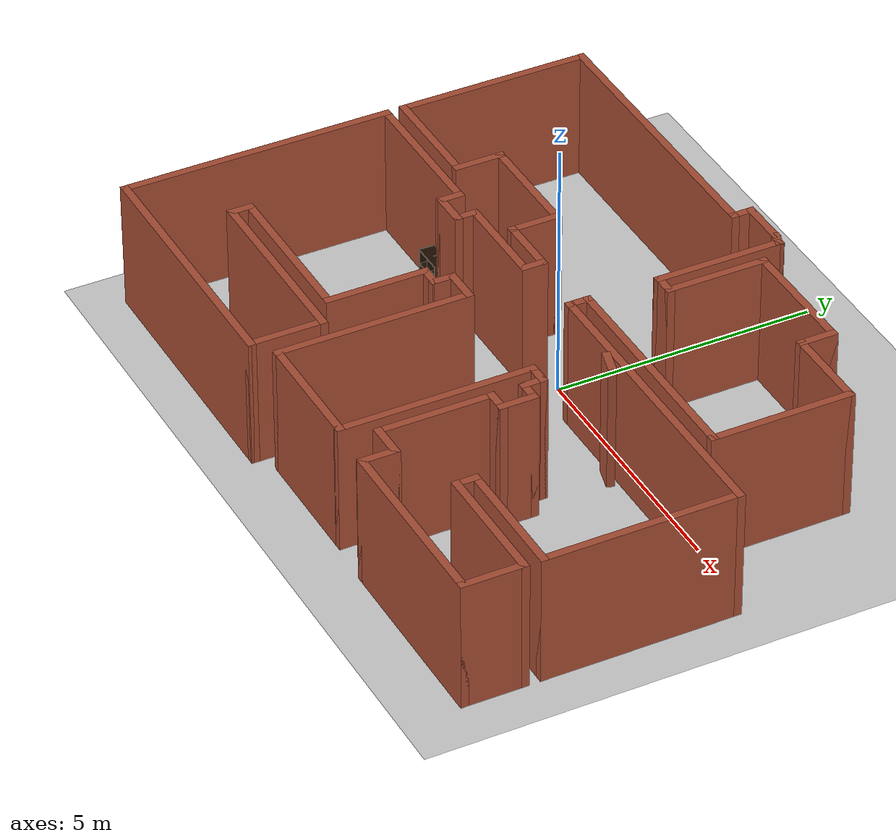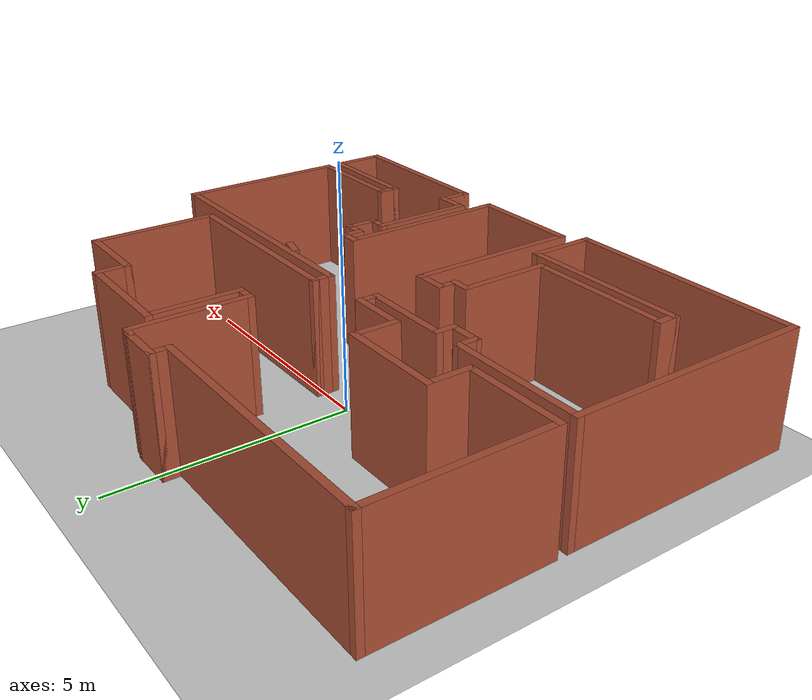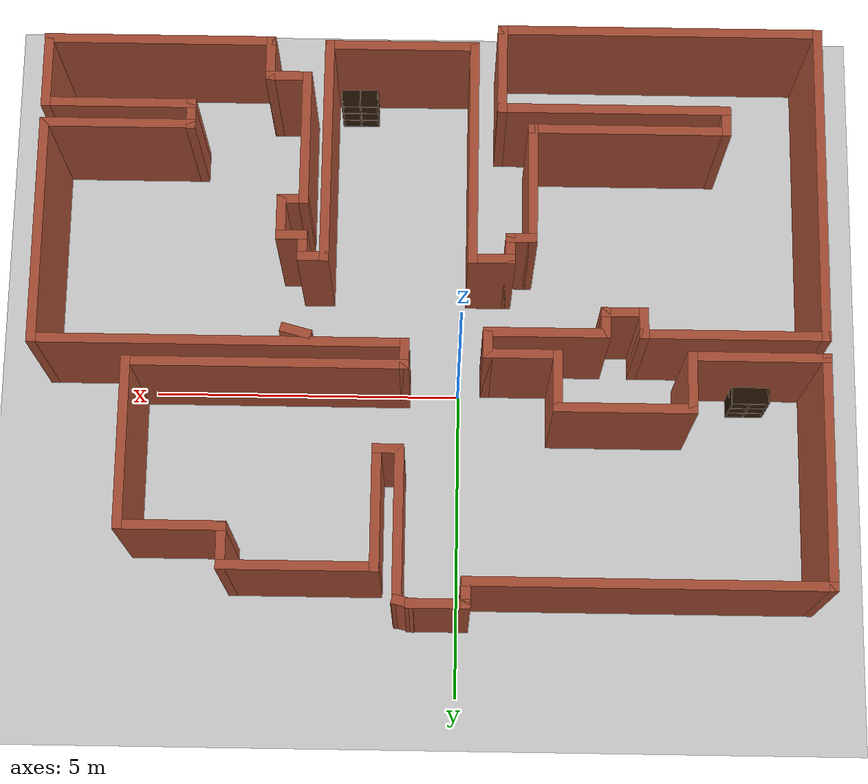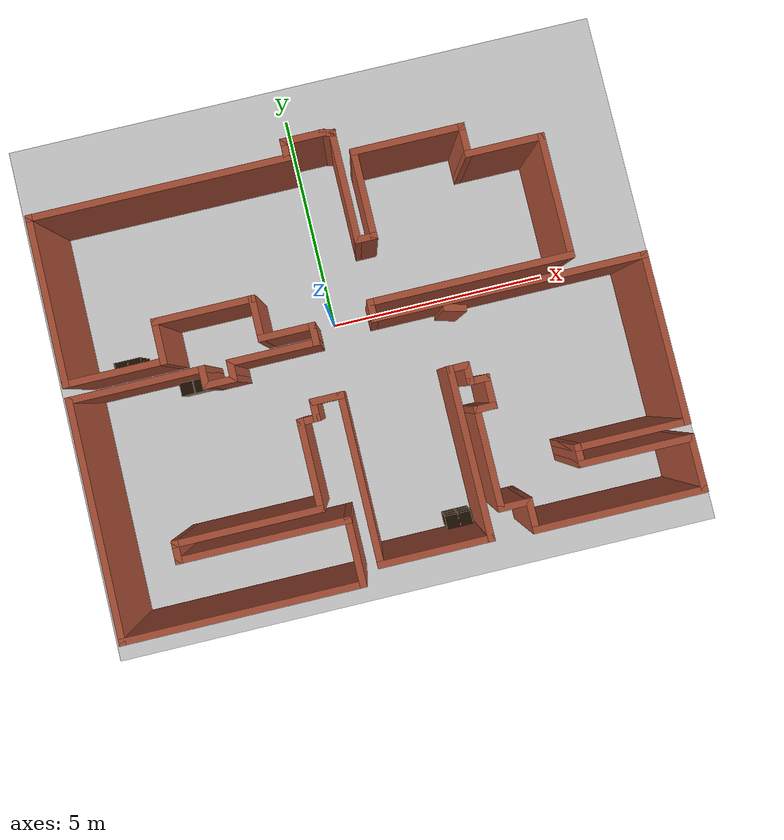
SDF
<sdf version="1.7">
 <world name="default">
  <light name="sun" type="directional">
   <pose>0 0 10 0 -0 0</pose>
   <diffuse>0.8 0.8 0.8 1</diffuse>
   <specular>0.2 0.2 0.2 1</specular>
   <attenuation>
    <range>1000</range>
    <constant>0.9</constant>
    <linear>0.01</linear>
    <quadratic>0.001</quadratic>
   </attenuation>
   <direction>-0.5 0.1 -0.9</direction>
   <spot><inner_angle>0</inner_angle><outer_angle>0</outer_angle><falloff>0</falloff></spot>
  </light>
  <model name="ground_plane">
   <static>1</static>
   <link name="link">
    <collision name="collision">
     <geometry><plane><normal>0 0 1</normal><size>100 100</size></plane></geometry>
     <surface>
      <contact><collide_bitmask>65535</collide_bitmask></contact>
      <friction><ode><mu>100</mu><mu2>50</mu2></ode></friction>
     </surface>
    </collision>
    <visual name="visual">
     <cast_shadows>0</cast_shadows>
     <geometry><plane><normal>0 0 1</normal><size>100 100</size></plane></geometry>
     <material>
      <script><uri>file://media/materials/scripts/gazebo.material</uri><name>Gazebo/Grey</name></script>
     </material>
    </visual>
   </link>
  </model>
  <gravity>0 0 -9.8</gravity>
  <magnetic_field>6e-06 2.3e-05 -4.2e-05</magnetic_field>
  <atmosphere type="adiabatic"/>
  <physics name="default_physics" default="0" type="ode">
   <max_step_size>0.001</max_step_size>
   <real_time_factor>1</real_time_factor>
   <real_time_update_rate>1000</real_time_update_rate>
  </physics>
  <scene><ambient>0.4 0.4 0.4 1</ambient><background>0.7 0.7 0.7 1</background><shadows>1</shadows></scene>
  <audio><device>default</device></audio>
  <spherical_coordinates>
   <surface_model>EARTH_WGS84</surface_model>
   <latitude_deg>0</latitude_deg>
   <longitude_deg>0</longitude_deg>
   <elevation>0</elevation>
   <heading_deg>0</heading_deg>
  </spherical_coordinates>
  <model name="map_66">
   <pose>0.49842 -0.84636 0 0 -0 0</pose>
   <link name="Wall_0">
    <collision name="Wall_0_Collision">
     <geometry><box><size>1 0.15 2.5</size></box></geometry>
     <pose>0 0 1.25 0 -0 0</pose>
    </collision>
    <visual name="Wall_0_Visual">
     <pose>0 0 1.25 0 -0 0</pose>
     <geometry><box><size>1 0.15 2.5</size></box></geometry>
     <material>
      <script><uri>file://media/materials/scripts/gazebo.material</uri><name>Gazebo/Bricks</name></script>
      <ambient>1 1 1 1</ambient>
     </material>
     <meta><layer>0</layer></meta>
    </visual>
    <pose>-0.2 4.69203 0 0 -0 3.14159</pose>
   </link>
   <link name="Wall_1">
    <collision name="Wall_1_Collision">
     <geometry><box><size>0.5 0.15 2.5</size></box></geometry>
     <pose>0 0 1.25 0 -0 0</pose>
    </collision>
    <visual name="Wall_1_Visual">
     <pose>0 0 1.25 0 -0 0</pose>
     <geometry><box><size>0.5 0.15 2.5</size></box></geometry>
     <material>
      <script><uri>file://media/materials/scripts/gazebo.material</uri><name>Gazebo/Bricks</name></script>
      <ambient>1 1 1 1</ambient>
     </material>
     <meta><layer>0</layer></meta>
    </visual>
    <pose>-0.625 4.51703 0 0 -0 -1.5708</pose>
   </link>
   <link name="Wall_12">
    <collision name="Wall_12_Collision">
     <geometry><box><size>2 0.15 2.5</size></box></geometry>
     <pose>0 0 1.25 0 -0 0</pose>
    </collision>
    <visual name="Wall_12_Visual">
     <pose>0 0 1.25 0 -0 0</pose>
     <geometry><box><size>2 0.15 2.5</size></box></geometry>
     <material>
      <script><uri>file://media/materials/scripts/gazebo.material</uri><name>Gazebo/Bricks</name></script>
      <ambient>1 1 1 1</ambient>
     </material>
     <meta><layer>0</layer></meta>
    </visual>
    <pose>-1.85 0.392025 0 0 -0 3.14159</pose>
   </link>
   <link name="Wall_13">
    <collision name="Wall_13_Collision">
     <geometry><box><size>0.5 0.15 2.5</size></box></geometry>
     <pose>0 0 1.25 0 -0 0</pose>
    </collision>
    <visual name="Wall_13_Visual">
     <pose>0 0 1.25 0 -0 0</pose>
     <geometry><box><size>0.5 0.15 2.5</size></box></geometry>
     <material>
      <script><uri>file://media/materials/scripts/gazebo.material</uri><name>Gazebo/Bricks</name></script>
      <ambient>1 1 1 1</ambient>
     </material>
     <meta><layer>0</layer></meta>
    </visual>
    <pose>-2.775 0.217025 0 0 -0 -1.5708</pose>
   </link>
   <link name="Wall_14">
    <collision name="Wall_14_Collision">
     <geometry><box><size>0.75 0.15 2.5</size></box></geometry>
     <pose>0 0 1.25 0 -0 0</pose>
    </collision>
    <visual name="Wall_14_Visual">
     <pose>0 0 1.25 0 -0 0</pose>
     <geometry><box><size>0.75 0.15 2.5</size></box></geometry>
     <material>
      <script><uri>file://media/materials/scripts/gazebo.material</uri><name>Gazebo/Bricks</name></script>
      <ambient>1 1 1 1</ambient>
     </material>
     <meta><layer>0</layer></meta>
    </visual>
    <pose>-3.075 0.042025 0 0 -0 3.14159</pose>
   </link>
   <link name="Wall_15">
    <collision name="Wall_15_Collision">
     <geometry><box><size>0.5 0.15 2.5</size></box></geometry>
     <pose>0 0 1.25 0 -0 0</pose>
    </collision>
    <visual name="Wall_15_Visual">
     <pose>0 0 1.25 0 -0 0</pose>
     <geometry><box><size>0.5 0.15 2.5</size></box></geometry>
     <material>
      <script><uri>file://media/materials/scripts/gazebo.material</uri><name>Gazebo/Bricks</name></script>
      <ambient>1 1 1 1</ambient>
     </material>
     <meta><layer>0</layer></meta>
    </visual>
    <pose>-3.375 0.217025 0 0 -0 1.5708</pose>
   </link>
   <link name="Wall_16">
    <collision name="Wall_16_Collision">
     <geometry><box><size>3 0.15 2.5</size></box></geometry>
     <pose>0 0 1.25 0 -0 0</pose>
    </collision>
    <visual name="Wall_16_Visual">
     <pose>0 0 1.25 0 -0 0</pose>
     <geometry><box><size>3 0.15 2.5</size></box></geometry>
     <material>
      <script><uri>file://media/materials/scripts/gazebo.material</uri><name>Gazebo/Bricks</name></script>
      <ambient>1 1 1 1</ambient>
     </material>
     <meta><layer>0</layer></meta>
    </visual>
    <pose>-4.8 0.392025 0 0 -0 3.14159</pose>
   </link>
   <link name="Wall_17">
    <collision name="Wall_17_Collision">
     <geometry><box><size>5.25 0.15 2.5</size></box></geometry>
     <pose>0 0 1.25 0 -0 0</pose>
    </collision>
    <visual name="Wall_17_Visual">
     <pose>0 0 1.25 0 -0 0</pose>
     <geometry><box><size>5.25 0.15 2.5</size></box></geometry>
     <material>
      <script><uri>file://media/materials/scripts/gazebo.material</uri><name>Gazebo/Bricks</name></script>
      <ambient>1 1 1 1</ambient>
     </material>
     <meta><layer>0</layer></meta>
    </visual>
    <pose>-6.225 -2.15797 0 0 -0 -1.5708</pose>
   </link>
   <link name="Wall_18">
    <collision name="Wall_18_Collision">
     <geometry><box><size>5.25 0.15 2.5</size></box></geometry>
     <pose>0 0 1.25 0 -0 0</pose>
    </collision>
    <visual name="Wall_18_Visual">
     <pose>0 0 1.25 0 -0 0</pose>
     <geometry><box><size>5.25 0.15 2.5</size></box></geometry>
     <material>
      <script><uri>file://media/materials/scripts/gazebo.material</uri><name>Gazebo/Bricks</name></script>
      <ambient>1 1 1 1</ambient>
     </material>
     <meta><layer>0</layer></meta>
    </visual>
    <pose>-3.675 -4.70798 0 0 -0 0</pose>
   </link>
   <link name="Wall_19">
    <collision name="Wall_19_Collision">
     <geometry><box><size>1.5 0.15 2.5</size></box></geometry>
     <pose>0 0 1.25 0 -0 0</pose>
    </collision>
    <visual name="Wall_19_Visual">
     <pose>0 0 1.25 0 -0 0</pose>
     <geometry><box><size>1.5 0.15 2.5</size></box></geometry>
     <material>
      <script><uri>file://media/materials/scripts/gazebo.material</uri><name>Gazebo/Bricks</name></script>
      <ambient>1 1 1 1</ambient>
     </material>
     <meta><layer>0</layer></meta>
    </visual>
    <pose>-1.125 -4.03298 0 0 -0 1.5708</pose>
   </link>
   <link name="Wall_2">
    <collision name="Wall_2_Collision">
     <geometry><box><size>5.75 0.15 2.5</size></box></geometry>
     <pose>0 0 1.25 0 -0 0</pose>
    </collision>
    <visual name="Wall_2_Visual">
     <pose>0 0 1.25 0 -0 0</pose>
     <geometry><box><size>5.75 0.15 2.5</size></box></geometry>
     <material>
      <script><uri>file://media/materials/scripts/gazebo.material</uri><name>Gazebo/Bricks</name></script>
      <ambient>1 1 1 1</ambient>
     </material>
     <meta><layer>0</layer></meta>
    </visual>
    <pose>-3.425 4.34202 0 0 -0 3.14159</pose>
   </link>
   <link name="Wall_20">
    <collision name="Wall_20_Collision">
     <geometry><box><size>3.75 0.15 2.5</size></box></geometry>
     <pose>0 0 1.25 0 -0 0</pose>
    </collision>
    <visual name="Wall_20_Visual">
     <pose>0 0 1.25 0 -0 0</pose>
     <geometry><box><size>3.75 0.15 2.5</size></box></geometry>
     <material>
      <script><uri>file://media/materials/scripts/gazebo.material</uri><name>Gazebo/Bricks</name></script>
      <ambient>1 1 1 1</ambient>
     </material>
     <meta><layer>0</layer></meta>
    </visual>
    <pose>-2.925 -3.35798 0 0 -0 3.14159</pose>
   </link>
   <link name="Wall_21">
    <collision name="Wall_21_Collision">
     <geometry><box><size>0.5 0.15 2.5</size></box></geometry>
     <pose>0 0 1.25 0 -0 0</pose>
    </collision>
    <visual name="Wall_21_Visual">
     <pose>0 0 1.25 0 -0 0</pose>
     <geometry><box><size>0.5 0.15 2.5</size></box></geometry>
     <material>
      <script><uri>file://media/materials/scripts/gazebo.material</uri><name>Gazebo/Bricks</name></script>
      <ambient>1 1 1 1</ambient>
     </material>
     <meta><layer>0</layer></meta>
    </visual>
    <pose>-4.725 -3.18297 0 0 -0 1.5708</pose>
   </link>
   <link name="Wall_22">
    <collision name="Wall_22_Collision">
     <geometry><box><size>3.25 0.15 2.5</size></box></geometry>
     <pose>0 0 1.25 0 -0 0</pose>
    </collision>
    <visual name="Wall_22_Visual">
     <pose>0 0 1.25 0 -0 0</pose>
     <geometry><box><size>3.25 0.15 2.5</size></box></geometry>
     <material>
      <script><uri>file://media/materials/scripts/gazebo.material</uri><name>Gazebo/Bricks</name></script>
      <ambient>1 1 1 1</ambient>
     </material>
     <meta><layer>0</layer></meta>
    </visual>
    <pose>-3.175 -3.00798 0 0 -0 0</pose>
   </link>
   <link name="Wall_28">
    <collision name="Wall_28_Collision">
     <geometry><box><size>2.5 0.15 2.5</size></box></geometry>
     <pose>0 0 1.25 0 -0 0</pose>
    </collision>
    <visual name="Wall_28_Visual">
     <pose>0 0 1.25 0 -0 0</pose>
     <geometry><box><size>2.5 0.15 2.5</size></box></geometry>
     <material>
      <script><uri>file://media/materials/scripts/gazebo.material</uri><name>Gazebo/Bricks</name></script>
      <ambient>1 1 1 1</ambient>
     </material>
     <meta><layer>0</layer></meta>
    </visual>
    <pose>0.5 -4.40798 0 0 -0 0</pose>
   </link>
   <link name="Wall_29">
    <collision name="Wall_29_Collision">
     <geometry><box><size>3.75 0.15 2.5</size></box></geometry>
     <pose>0 0 1.25 0 -0 0</pose>
    </collision>
    <visual name="Wall_29_Visual">
     <pose>0 0 1.25 0 -0 0</pose>
     <geometry><box><size>3.75 0.15 2.5</size></box></geometry>
     <material>
      <script><uri>file://media/materials/scripts/gazebo.material</uri><name>Gazebo/Bricks</name></script>
      <ambient>1 1 1 1</ambient>
     </material>
     <meta><layer>0</layer></meta>
    </visual>
    <pose>1.675 -2.60798 0 0 -0 1.5708</pose>
   </link>
   <link name="Wall_3">
    <collision name="Wall_3_Collision">
     <geometry><box><size>3.75 0.15 2.5</size></box></geometry>
     <pose>0 0 1.25 0 -0 0</pose>
    </collision>
    <visual name="Wall_3_Visual">
     <pose>0 0 1.25 0 -0 0</pose>
     <geometry><box><size>3.75 0.15 2.5</size></box></geometry>
     <material>
      <script><uri>file://media/materials/scripts/gazebo.material</uri><name>Gazebo/Bricks</name></script>
      <ambient>1 1 1 1</ambient>
     </material>
     <meta><layer>0</layer></meta>
    </visual>
    <pose>-6.225 2.54203 0 0 -0 -1.5708</pose>
   </link>
   <link name="Wall_30">
    <collision name="Wall_30_Collision">
     <geometry><box><size>0.5 0.15 2.5</size></box></geometry>
     <pose>0 0 1.25 0 -0 0</pose>
    </collision>
    <visual name="Wall_30_Visual">
     <pose>0 0 1.25 0 -0 0</pose>
     <geometry><box><size>0.5 0.15 2.5</size></box></geometry>
     <material>
      <script><uri>file://media/materials/scripts/gazebo.material</uri><name>Gazebo/Bricks</name></script>
      <ambient>1 1 1 1</ambient>
     </material>
     <meta><layer>0</layer></meta>
    </visual>
    <pose>1.85 -0.807975 0 0 -0 0</pose>
   </link>
   <link name="Wall_31">
    <collision name="Wall_31_Collision">
     <geometry><box><size>0.5 0.15 2.5</size></box></geometry>
     <pose>0 0 1.25 0 -0 0</pose>
    </collision>
    <visual name="Wall_31_Visual">
     <pose>0 0 1.25 0 -0 0</pose>
     <geometry><box><size>0.5 0.15 2.5</size></box></geometry>
     <material>
      <script><uri>file://media/materials/scripts/gazebo.material</uri><name>Gazebo/Bricks</name></script>
      <ambient>1 1 1 1</ambient>
     </material>
     <meta><layer>0</layer></meta>
    </visual>
    <pose>2.025 -0.982975 0 0 -0 -1.5708</pose>
   </link>
   <link name="Wall_32">
    <collision name="Wall_32_Collision">
     <geometry><box><size>0.5 0.15 2.5</size></box></geometry>
     <pose>0 0 1.25 0 -0 0</pose>
    </collision>
    <visual name="Wall_32_Visual">
     <pose>0 0 1.25 0 -0 0</pose>
     <geometry><box><size>0.5 0.15 2.5</size></box></geometry>
     <material>
      <script><uri>file://media/materials/scripts/gazebo.material</uri><name>Gazebo/Bricks</name></script>
      <ambient>1 1 1 1</ambient>
     </material>
     <meta><layer>0</layer></meta>
    </visual>
    <pose>2.2 -1.15797 0 0 -0 0</pose>
   </link>
   <link name="Wall_33">
    <collision name="Wall_33_Collision">
     <geometry><box><size>0.75 0.15 2.5</size></box></geometry>
     <pose>0 0 1.25 0 -0 0</pose>
    </collision>
    <visual name="Wall_33_Visual">
     <pose>0 0 1.25 0 -0 0</pose>
     <geometry><box><size>0.75 0.15 2.5</size></box></geometry>
     <material>
      <script><uri>file://media/materials/scripts/gazebo.material</uri><name>Gazebo/Bricks</name></script>
      <ambient>1 1 1 1</ambient>
     </material>
     <meta><layer>0</layer></meta>
    </visual>
    <pose>2.375 -1.45798 0 0 -0 -1.5708</pose>
   </link>
   <link name="Wall_34">
    <collision name="Wall_34_Collision">
     <geometry><box><size>0.5 0.15 2.5</size></box></geometry>
     <pose>0 0 1.25 0 -0 0</pose>
    </collision>
    <visual name="Wall_34_Visual">
     <pose>0 0 1.25 0 -0 0</pose>
     <geometry><box><size>0.5 0.15 2.5</size></box></geometry>
     <material>
      <script><uri>file://media/materials/scripts/gazebo.material</uri><name>Gazebo/Bricks</name></script>
      <ambient>1 1 1 1</ambient>
     </material>
     <meta><layer>0</layer></meta>
    </visual>
    <pose>2.2 -1.75798 0 0 -0 3.14159</pose>
   </link>
   <link name="Wall_35">
    <collision name="Wall_35_Collision">
     <geometry><box><size>2.25 0.15 2.5</size></box></geometry>
     <pose>0 0 1.25 0 -0 0</pose>
    </collision>
    <visual name="Wall_35_Visual">
     <pose>0 0 1.25 0 -0 0</pose>
     <geometry><box><size>2.25 0.15 2.5</size></box></geometry>
     <material>
      <script><uri>file://media/materials/scripts/gazebo.material</uri><name>Gazebo/Bricks</name></script>
      <ambient>1 1 1 1</ambient>
     </material>
     <meta><layer>0</layer></meta>
    </visual>
    <pose>2.025 -2.80797 0 0 -0 -1.5708</pose>
   </link>
   <link name="Wall_36">
    <collision name="Wall_36_Collision">
     <geometry><box><size>0.75 0.15 2.5</size></box></geometry>
     <pose>0 0 1.25 0 -0 0</pose>
    </collision>
    <visual name="Wall_36_Visual">
     <pose>0 0 1.25 0 -0 0</pose>
     <geometry><box><size>0.75 0.15 2.5</size></box></geometry>
     <material>
      <script><uri>file://media/materials/scripts/gazebo.material</uri><name>Gazebo/Bricks</name></script>
      <ambient>1 1 1 1</ambient>
     </material>
     <meta><layer>0</layer></meta>
    </visual>
    <pose>2.325 -3.85798 0 0 -0 0</pose>
   </link>
   <link name="Wall_37">
    <collision name="Wall_37_Collision">
     <geometry><box><size>0.75 0.15 2.5</size></box></geometry>
     <pose>0 0 1.25 0 -0 0</pose>
    </collision>
    <visual name="Wall_37_Visual">
     <pose>0 0 1.25 0 -0 0</pose>
     <geometry><box><size>0.75 0.15 2.5</size></box></geometry>
     <material>
      <script><uri>file://media/materials/scripts/gazebo.material</uri><name>Gazebo/Bricks</name></script>
      <ambient>1 1 1 1</ambient>
     </material>
     <meta><layer>0</layer></meta>
    </visual>
    <pose>2.625 -4.15798 0 0 -0 -1.5708</pose>
   </link>
   <link name="Wall_38">
    <collision name="Wall_38_Collision">
     <geometry><box><size>3.75 0.15 2.5</size></box></geometry>
     <pose>0 0 1.25 0 -0 0</pose>
    </collision>
    <visual name="Wall_38_Visual">
     <pose>0 0 1.25 0 -0 0</pose>
     <geometry><box><size>3.75 0.15 2.5</size></box></geometry>
     <material>
      <script><uri>file://media/materials/scripts/gazebo.material</uri><name>Gazebo/Bricks</name></script>
      <ambient>1 1 1 1</ambient>
     </material>
     <meta><layer>0</layer></meta>
    </visual>
    <pose>4.425 -4.45798 0 0 -0 0</pose>
   </link>
   <link name="Wall_39">
    <collision name="Wall_39_Collision">
     <geometry><box><size>1.25 0.15 2.5</size></box></geometry>
     <pose>0 0 1.25 0 -0 0</pose>
    </collision>
    <visual name="Wall_39_Visual">
     <pose>0 0 1.25 0 -0 0</pose>
     <geometry><box><size>1.25 0.15 2.5</size></box></geometry>
     <material>
      <script><uri>file://media/materials/scripts/gazebo.material</uri><name>Gazebo/Bricks</name></script>
      <ambient>1 1 1 1</ambient>
     </material>
     <meta><layer>0</layer></meta>
    </visual>
    <pose>6.225 -3.90797 0 0 -0 1.5708</pose>
   </link>
   <link name="Wall_4">
    <collision name="Wall_4_Collision">
     <geometry><box><size>2.25 0.15 2.5</size></box></geometry>
     <pose>0 0 1.25 0 -0 0</pose>
    </collision>
    <visual name="Wall_4_Visual">
     <pose>0 0 1.25 0 -0 0</pose>
     <geometry><box><size>2.25 0.15 2.5</size></box></geometry>
     <material>
      <script><uri>file://media/materials/scripts/gazebo.material</uri><name>Gazebo/Bricks</name></script>
      <ambient>1 1 1 1</ambient>
     </material>
     <meta><layer>0</layer></meta>
    </visual>
    <pose>-5.175 0.742025 0 0 -0 0</pose>
   </link>
   <link name="Wall_44">
    <collision name="Wall_44_Collision">
     <geometry><box><size>2 0.15 2.5</size></box></geometry>
     <pose>0 0 1.25 0 -0 0</pose>
    </collision>
    <visual name="Wall_44_Visual">
     <pose>0 0 1.25 0 -0 0</pose>
     <geometry><box><size>2 0.15 2.5</size></box></geometry>
     <material>
      <script><uri>file://media/materials/scripts/gazebo.material</uri><name>Gazebo/Bricks</name></script>
      <ambient>1 1 1 1</ambient>
     </material>
     <meta><layer>0</layer></meta>
    </visual>
    <pose>-1.625 -2.08297 0 0 -0 1.5708</pose>
   </link>
   <link name="Wall_45">
    <collision name="Wall_45_Collision">
     <geometry><box><size>0.5 0.15 2.5</size></box></geometry>
     <pose>0 0 1.25 0 -0 0</pose>
    </collision>
    <visual name="Wall_45_Visual">
     <pose>0 0 1.25 0 -0 0</pose>
     <geometry><box><size>0.5 0.15 2.5</size></box></geometry>
     <material>
      <script><uri>file://media/materials/scripts/gazebo.material</uri><name>Gazebo/Bricks</name></script>
      <ambient>1 1 1 1</ambient>
     </material>
     <meta><layer>0</layer></meta>
    </visual>
    <pose>-1.45 -1.15797 0 0 -0 0</pose>
   </link>
   <link name="Wall_46">
    <collision name="Wall_46_Collision">
     <geometry><box><size>0.5 0.15 2.5</size></box></geometry>
     <pose>0 0 1.25 0 -0 0</pose>
    </collision>
    <visual name="Wall_46_Visual">
     <pose>0 0 1.25 0 -0 0</pose>
     <geometry><box><size>0.5 0.15 2.5</size></box></geometry>
     <material>
      <script><uri>file://media/materials/scripts/gazebo.material</uri><name>Gazebo/Bricks</name></script>
      <ambient>1 1 1 1</ambient>
     </material>
     <meta><layer>0</layer></meta>
    </visual>
    <pose>-1.275 -0.982975 0 0 -0 1.5708</pose>
   </link>
   <link name="Wall_49">
    <collision name="Wall_49_Collision">
     <geometry><box><size>0.75 0.15 2.5</size></box></geometry>
     <pose>0 0 1.25 0 -0 0</pose>
    </collision>
    <visual name="Wall_49_Visual">
     <pose>0 0 1.25 0 -0 0</pose>
     <geometry><box><size>0.75 0.15 2.5</size></box></geometry>
     <material>
      <script><uri>file://media/materials/scripts/gazebo.material</uri><name>Gazebo/Bricks</name></script>
      <ambient>1 1 1 1</ambient>
     </material>
     <meta><layer>0</layer></meta>
    </visual>
    <pose>-0.975 -0.807975 0 0 -0 0</pose>
   </link>
   <link name="Wall_5">
    <collision name="Wall_5_Collision">
     <geometry><box><size>1 0.15 2.5</size></box></geometry>
     <pose>0 0 1.25 0 -0 0</pose>
    </collision>
    <visual name="Wall_5_Visual">
     <pose>0 0 1.25 0 -0 0</pose>
     <geometry><box><size>1 0.15 2.5</size></box></geometry>
     <material>
      <script><uri>file://media/materials/scripts/gazebo.material</uri><name>Gazebo/Bricks</name></script>
      <ambient>1 1 1 1</ambient>
     </material>
     <meta><layer>0</layer></meta>
    </visual>
    <pose>-4.125 1.16702 0 0 -0 1.5708</pose>
   </link>
   <link name="Wall_50">
    <collision name="Wall_50_Collision">
     <geometry><box><size>3.75 0.15 2.5</size></box></geometry>
     <pose>0 0 1.25 0 -0 0</pose>
    </collision>
    <visual name="Wall_50_Visual">
     <pose>0 0 1.25 0 -0 0</pose>
     <geometry><box><size>3.75 0.15 2.5</size></box></geometry>
     <material>
      <script><uri>file://media/materials/scripts/gazebo.material</uri><name>Gazebo/Bricks</name></script>
      <ambient>1 1 1 1</ambient>
     </material>
     <meta><layer>0</layer></meta>
    </visual>
    <pose>-0.675 -2.60798 0 0 -0 -1.5708</pose>
   </link>
   <link name="Wall_53">
    <collision name="Wall_53_Collision">
     <geometry><box><size>2.5 0.15 2.5</size></box></geometry>
     <pose>0 0 1.25 0 -0 0</pose>
    </collision>
    <visual name="Wall_53_Visual">
     <pose>0 0 1.25 0 -0 0</pose>
     <geometry><box><size>2.5 0.15 2.5</size></box></geometry>
     <material>
      <script><uri>file://media/materials/scripts/gazebo.material</uri><name>Gazebo/Bricks</name></script>
      <ambient>1 1 1 1</ambient>
     </material>
     <meta><layer>0</layer></meta>
    </visual>
    <pose>5.05 -3.35798 0 0 -0 3.14159</pose>
   </link>
   <link name="Wall_54">
    <collision name="Wall_54_Collision">
     <geometry><box><size>0.5 0.15 2.5</size></box></geometry>
     <pose>0 0 1.25 0 -0 0</pose>
    </collision>
    <visual name="Wall_54_Visual">
     <pose>0 0 1.25 0 -0 0</pose>
     <geometry><box><size>0.5 0.15 2.5</size></box></geometry>
     <material>
      <script><uri>file://media/materials/scripts/gazebo.material</uri><name>Gazebo/Bricks</name></script>
      <ambient>1 1 1 1</ambient>
     </material>
     <meta><layer>0</layer></meta>
    </visual>
    <pose>3.875 -3.18297 0 0 -0 1.5708</pose>
   </link>
   <link name="Wall_55">
    <collision name="Wall_55_Collision">
     <geometry><box><size>2.5 0.15 2.5</size></box></geometry>
     <pose>0 0 1.25 0 -0 0</pose>
    </collision>
    <visual name="Wall_55_Visual">
     <pose>0 0 1.25 0 -0 0</pose>
     <geometry><box><size>2.5 0.15 2.5</size></box></geometry>
     <material>
      <script><uri>file://media/materials/scripts/gazebo.material</uri><name>Gazebo/Bricks</name></script>
      <ambient>1 1 1 1</ambient>
     </material>
     <meta><layer>0</layer></meta>
    </visual>
    <pose>5.05 -3.00798 0 0 -0 0</pose>
   </link>
   <link name="Wall_58">
    <collision name="Wall_58_Collision">
     <geometry><box><size>3.75 0.15 2.5</size></box></geometry>
     <pose>0 0 1.25 0 -0 0</pose>
    </collision>
    <visual name="Wall_58_Visual">
     <pose>0 0 1.25 0 -0 0</pose>
     <geometry><box><size>3.75 0.15 2.5</size></box></geometry>
     <material>
      <script><uri>file://media/materials/scripts/gazebo.material</uri><name>Gazebo/Bricks</name></script>
      <ambient>1 1 1 1</ambient>
     </material>
     <meta><layer>0</layer></meta>
    </visual>
    <pose>6.225 -1.20798 0 0 -0 1.5708</pose>
   </link>
   <link name="Wall_59">
    <collision name="Wall_59_Collision">
     <geometry><box><size>6 0.15 2.5</size></box></geometry>
     <pose>0 0 1.25 0 -0 0</pose>
    </collision>
    <visual name="Wall_59_Visual">
     <pose>0 0 1.25 0 -0 0</pose>
     <geometry><box><size>6 0.15 2.5</size></box></geometry>
     <material>
      <script><uri>file://media/materials/scripts/gazebo.material</uri><name>Gazebo/Bricks</name></script>
      <ambient>1 1 1 1</ambient>
     </material>
     <meta><layer>0</layer></meta>
    </visual>
    <pose>3.3 0.592025 0 0 -0 3.14159</pose>
   </link>
   <link name="Wall_6">
    <collision name="Wall_6_Collision">
     <geometry><box><size>2.25 0.15 2.5</size></box></geometry>
     <pose>0 0 1.25 0 -0 0</pose>
    </collision>
    <visual name="Wall_6_Visual">
     <pose>0 0 1.25 0 -0 0</pose>
     <geometry><box><size>2.25 0.15 2.5</size></box></geometry>
     <material>
      <script><uri>file://media/materials/scripts/gazebo.material</uri><name>Gazebo/Bricks</name></script>
      <ambient>1 1 1 1</ambient>
     </material>
     <meta><layer>0</layer></meta>
    </visual>
    <pose>-3.075 1.59203 0 0 -0 0</pose>
   </link>
   <link name="Wall_60">
    <collision name="Wall_60_Collision">
     <geometry><box><size>0.5 0.15 2.5</size></box></geometry>
     <pose>0 0 1.25 0 -0 0</pose>
    </collision>
    <visual name="Wall_60_Visual">
     <pose>0 0 1.25 0 -0 0</pose>
     <geometry><box><size>0.5 0.15 2.5</size></box></geometry>
     <material>
      <script><uri>file://media/materials/scripts/gazebo.material</uri><name>Gazebo/Bricks</name></script>
      <ambient>1 1 1 1</ambient>
     </material>
     <meta><layer>0</layer></meta>
    </visual>
    <pose>0.375 0.767025 0 0 -0 1.5708</pose>
   </link>
   <link name="Wall_61">
    <collision name="Wall_61_Collision">
     <geometry><box><size>4.5 0.15 2.5</size></box></geometry>
     <pose>0 0 1.25 0 -0 0</pose>
    </collision>
    <visual name="Wall_61_Visual">
     <pose>0 0 1.25 0 -0 0</pose>
     <geometry><box><size>4.5 0.15 2.5</size></box></geometry>
     <material>
      <script><uri>file://media/materials/scripts/gazebo.material</uri><name>Gazebo/Bricks</name></script>
      <ambient>1 1 1 1</ambient>
     </material>
     <meta><layer>0</layer></meta>
    </visual>
    <pose>2.55 0.942025 0 0 -0 0</pose>
   </link>
   <link name="Wall_64">
    <collision name="Wall_64_Collision">
     <geometry><box><size>2.75 0.15 2.5</size></box></geometry>
     <pose>0 0 1.25 0 -0 0</pose>
    </collision>
    <visual name="Wall_64_Visual">
     <pose>0 0 1.25 0 -0 0</pose>
     <geometry><box><size>2.75 0.15 2.5</size></box></geometry>
     <material>
      <script><uri>file://media/materials/scripts/gazebo.material</uri><name>Gazebo/Bricks</name></script>
      <ambient>1 1 1 1</ambient>
     </material>
     <meta><layer>0</layer></meta>
    </visual>
    <pose>4.725 2.24202 0 0 -0 1.5708</pose>
   </link>
   <link name="Wall_65">
    <collision name="Wall_65_Collision">
     <geometry><box><size>1.75 0.15 2.5</size></box></geometry>
     <pose>0 0 1.25 0 -0 0</pose>
    </collision>
    <visual name="Wall_65_Visual">
     <pose>0 0 1.25 0 -0 0</pose>
     <geometry><box><size>1.75 0.15 2.5</size></box></geometry>
     <material>
      <script><uri>file://media/materials/scripts/gazebo.material</uri><name>Gazebo/Bricks</name></script>
      <ambient>1 1 1 1</ambient>
     </material>
     <meta><layer>0</layer></meta>
    </visual>
    <pose>3.925 3.54203 0 0 -0 3.14159</pose>
   </link>
   <link name="Wall_66">
    <collision name="Wall_66_Collision">
     <geometry><box><size>0.75 0.15 2.5</size></box></geometry>
     <pose>0 0 1.25 0 -0 0</pose>
    </collision>
    <visual name="Wall_66_Visual">
     <pose>0 0 1.25 0 -0 0</pose>
     <geometry><box><size>0.75 0.15 2.5</size></box></geometry>
     <material>
      <script><uri>file://media/materials/scripts/gazebo.material</uri><name>Gazebo/Bricks</name></script>
      <ambient>1 1 1 1</ambient>
     </material>
     <meta><layer>0</layer></meta>
    </visual>
    <pose>3.125 3.84203 0 0 -0 1.5708</pose>
   </link>
   <link name="Wall_67">
    <collision name="Wall_67_Collision">
     <geometry><box><size>2.5 0.15 2.5</size></box></geometry>
     <pose>0 0 1.25 0 -0 0</pose>
    </collision>
    <visual name="Wall_67_Visual">
     <pose>0 0 1.25 0 -0 0</pose>
     <geometry><box><size>2.5 0.15 2.5</size></box></geometry>
     <material>
      <script><uri>file://media/materials/scripts/gazebo.material</uri><name>Gazebo/Bricks</name></script>
      <ambient>1 1 1 1</ambient>
     </material>
     <meta><layer>0</layer></meta>
    </visual>
    <pose>1.95 4.14203 0 0 -0 3.14159</pose>
   </link>
   <link name="Wall_68">
    <collision name="Wall_68_Collision">
     <geometry><box><size>2 0.15 2.5</size></box></geometry>
     <pose>0 0 1.25 0 -0 0</pose>
    </collision>
    <visual name="Wall_68_Visual">
     <pose>0 0 1.25 0 -0 0</pose>
     <geometry><box><size>2 0.15 2.5</size></box></geometry>
     <material>
      <script><uri>file://media/materials/scripts/gazebo.material</uri><name>Gazebo/Bricks</name></script>
      <ambient>1 1 1 1</ambient>
     </material>
     <meta><layer>0</layer></meta>
    </visual>
    <pose>0.775 3.21703 0 0 -0 -1.5708</pose>
   </link>
   <link name="Wall_69">
    <collision name="Wall_69_Collision">
     <geometry><box><size>0.5 0.15 2.5</size></box></geometry>
     <pose>0 0 1.25 0 -0 0</pose>
    </collision>
    <visual name="Wall_69_Visual">
     <pose>0 0 1.25 0 -0 0</pose>
     <geometry><box><size>0.5 0.15 2.5</size></box></geometry>
     <material>
      <script><uri>file://media/materials/scripts/gazebo.material</uri><name>Gazebo/Bricks</name></script>
      <ambient>1 1 1 1</ambient>
     </material>
     <meta><layer>0</layer></meta>
    </visual>
    <pose>0.6 2.29203 0 0 -0 3.14159</pose>
   </link>
   <link name="Wall_7">
    <collision name="Wall_7_Collision">
     <geometry><box><size>1 0.15 2.5</size></box></geometry>
     <pose>0 0 1.25 0 -0 0</pose>
    </collision>
    <visual name="Wall_7_Visual">
     <pose>0 0 1.25 0 -0 0</pose>
     <geometry><box><size>1 0.15 2.5</size></box></geometry>
     <material>
      <script><uri>file://media/materials/scripts/gazebo.material</uri><name>Gazebo/Bricks</name></script>
      <ambient>1 1 1 1</ambient>
     </material>
     <meta><layer>0</layer></meta>
    </visual>
    <pose>-2.025 1.16702 0 0 -0 -1.5708</pose>
   </link>
   <link name="Wall_70">
    <collision name="Wall_70_Collision">
     <geometry><box><size>2.5 0.15 2.5</size></box></geometry>
     <pose>0 0 1.25 0 -0 0</pose>
    </collision>
    <visual name="Wall_70_Visual">
     <pose>0 0 1.25 0 -0 0</pose>
     <geometry><box><size>2.5 0.15 2.5</size></box></geometry>
     <material>
      <script><uri>file://media/materials/scripts/gazebo.material</uri><name>Gazebo/Bricks</name></script>
      <ambient>1 1 1 1</ambient>
     </material>
     <meta><layer>0</layer></meta>
    </visual>
    <pose>0.425 3.46703 0 0 -0 1.5708</pose>
   </link>
   <link name="Wall_71">
    <collision name="Wall_71_Collision">
     <geometry><box><size>0.356155 0.15 2.5</size></box></geometry>
     <pose>0 0 1.25 0 -0 0</pose>
    </collision>
    <visual name="Wall_71_Visual">
     <pose>0 0 1.25 0 -0 0</pose>
     <geometry><box><size>0.356155 0.15 2.5</size></box></geometry>
     <material>
      <script><uri>file://media/materials/scripts/gazebo.material</uri><name>Gazebo/Bricks</name></script>
      <ambient>1 1 1 1</ambient>
     </material>
     <meta><layer>0</layer></meta>
    </visual>
    <pose>0.325 4.66702 0 0 -0 2.89661</pose>
   </link>
   <link name="Wall_73">
    <collision name="Wall_73_Collision">
     <geometry><box><size>0.5 0.15 2.5</size></box></geometry>
     <pose>0 0 1.25 0 -0 0</pose>
    </collision>
    <visual name="Wall_73_Visual">
     <pose>0 0 1.25 0 -0 0</pose>
     <geometry><box><size>0.5 0.15 2.5</size></box></geometry>
     <material>
      <script><uri>file://media/materials/scripts/gazebo.material</uri><name>Gazebo/Bricks</name></script>
      <ambient>1 1 1 1</ambient>
     </material>
     <meta><layer>0</layer></meta>
    </visual>
    <pose>2.08394 0.420677 0 0 -0 -0.261799</pose>
   </link>
   <link name="Wall_8">
    <collision name="Wall_8_Collision">
     <geometry><box><size>1.25 0.15 2.5</size></box></geometry>
     <pose>0 0 1.25 0 -0 0</pose>
    </collision>
    <visual name="Wall_8_Visual">
     <pose>0 0 1.25 0 -0 0</pose>
     <geometry><box><size>1.25 0.15 2.5</size></box></geometry>
     <material>
      <script><uri>file://media/materials/scripts/gazebo.material</uri><name>Gazebo/Bricks</name></script>
      <ambient>1 1 1 1</ambient>
     </material>
     <meta><layer>0</layer></meta>
    </visual>
    <pose>-1.475 0.742025 0 0 -0 0</pose>
   </link>
   <link name="Wall_9">
    <collision name="Wall_9_Collision">
     <geometry><box><size>0.5 0.15 2.5</size></box></geometry>
     <pose>0 0 1.25 0 -0 0</pose>
    </collision>
    <visual name="Wall_9_Visual">
     <pose>0 0 1.25 0 -0 0</pose>
     <geometry><box><size>0.5 0.15 2.5</size></box></geometry>
     <material>
      <script><uri>file://media/materials/scripts/gazebo.material</uri><name>Gazebo/Bricks</name></script>
      <ambient>1 1 1 1</ambient>
     </material>
     <meta><layer>0</layer></meta>
    </visual>
    <pose>-0.925 0.567025 0 0 -0 -1.5708</pose>
   </link>
   <static>1</static>
  </model>
  <model name="6_Cube_StorageE">
   <link name="Wall_0">
    <pose>0 0 0.01 0 -0 0</pose>
    <inertial>
     <mass>1.6201</mass>
     <inertia><ixx>0.0119</ixx><iyy>0.0631</iyy><izz>0.0513</izz><ixy>0</ixy><ixz>0</ixz><iyz>0</iyz></inertia>
    </inertial>
    <collision name="Wall_0_Collision"><geometry><box><size>0.616 0.296 0.02</size></box></geometry></collision>
    <visual name="Wall_0_Visual">
     <geometry><box><size>0.616 0.296 0.02</size></box></geometry>
     <material>
      <script><uri>file://media/materials/scripts/gazebo.material</uri><name>Gazebo/Grey</name></script>
      <ambient>0.105882 0.0509804 0 1</ambient>
     </material>
    </visual>
   </link>
   <joint name="0_2" type="fixed">
    <pose>-0.308 0 0 0 -0 0</pose>
    <parent>Wall_2</parent>
    <child>Wall_0</child>
    <axis><xyz>1 0 0</xyz><limit><lower>-1e+16</lower><upper>1e+16</upper></limit></axis>
   </joint>
   <joint name="0_12" type="fixed">
    <parent>Wall_12</parent>
    <child>Wall_0</child>
    <axis><xyz>0 0 1</xyz><limit><lower>-1e+16</lower><upper>1e+16</upper></limit></axis>
   </joint>
   <joint name="0_4" type="fixed">
    <pose>0.308 0 0 0 -0 0</pose>
    <parent>Wall_4</parent>
    <child>Wall_0</child>
    <axis><xyz>1 0 0</xyz><limit><lower>-1e+16</lower><upper>1e+16</upper></limit></axis>
   </joint>
   <link name="Wall_10">
    <pose>0 0 0.61 0 -0 0</pose>
    <inertial>
     <mass>1.6201</mass>
     <inertia><ixx>0.0119</ixx><iyy>0.0631</iyy><izz>0.0513</izz><ixy>0</ixy><ixz>0</ixz><iyz>0</iyz></inertia>
    </inertial>
    <collision name="Wall_10_Collision"><geometry><box><size>0.616 0.296 0.02</size></box></geometry></collision>
    <visual name="Wall_10_Visual">
     <geometry><box><size>0.616 0.296 0.02</size></box></geometry>
     <material>
      <script><uri>file://media/materials/scripts/gazebo.material</uri><name>Gazebo/Grey</name></script>
      <ambient>0.105882 0.0509804 0 1</ambient>
     </material>
    </visual>
   </link>
   <joint name="10_2" type="fixed">
    <pose>-0.308 0 0 0 -0 0</pose>
    <parent>Wall_2</parent>
    <child>Wall_10</child>
    <axis><xyz>1 0 0</xyz><limit><lower>-1e+16</lower><upper>1e+16</upper></limit></axis>
   </joint>
   <joint name="10_12" type="fixed">
    <parent>Wall_12</parent>
    <child>Wall_10</child>
    <axis><xyz>0 0 1</xyz><limit><lower>-1e+16</lower><upper>1e+16</upper></limit></axis>
   </joint>
   <joint name="10_4" type="fixed">
    <pose>0.308 0 0 0 -0 0</pose>
    <parent>Wall_4</parent>
    <child>Wall_10</child>
    <axis><xyz>1 0 0</xyz><limit><lower>-1e+16</lower><upper>1e+16</upper></limit></axis>
   </joint>
   <link name="Wall_12">
    <pose>0 0 0.4575 0 -0 0</pose>
    <inertial>
     <mass>2.4065</mass>
     <inertia><ixx>0.0177</ixx><iyy>0.1855</iyy><izz>0.168</izz><ixy>0</ixy><ixz>0</ixz><iyz>0</iyz></inertia>
    </inertial>
    <collision name="Wall_12_Collision"><geometry><box><size>0.02 0.296 0.915</size></box></geometry></collision>
    <visual name="Wall_12_Visual">
     <geometry><box><size>0.02 0.296 0.915</size></box></geometry>
     <material>
      <script><uri>file://media/materials/scripts/gazebo.material</uri><name>Gazebo/Grey</name></script>
      <ambient>0.105882 0.0509804 0 1</ambient>
     </material>
    </visual>
   </link>
   <link name="Wall_2">
    <pose>-0.298 0 0.4575 0 -0 0</pose>
    <inertial>
     <mass>2.4065</mass>
     <inertia><ixx>0.0177</ixx><iyy>0.1855</iyy><izz>0.168</izz><ixy>0</ixy><ixz>0</ixz><iyz>0</iyz></inertia>
    </inertial>
    <collision name="Wall_2_Collision"><geometry><box><size>0.02 0.296 0.915</size></box></geometry></collision>
    <visual name="Wall_2_Visual">
     <geometry><box><size>0.02 0.296 0.915</size></box></geometry>
     <material>
      <script><uri>file://media/materials/scripts/gazebo.material</uri><name>Gazebo/Grey</name></script>
      <ambient>0.105882 0.0509804 0 1</ambient>
     </material>
    </visual>
   </link>
   <link name="Wall_4">
    <pose>0.298 0 0.4575 0 -0 0</pose>
    <inertial>
     <mass>2.4065</mass>
     <inertia><ixx>0.0177</ixx><iyy>0.1855</iyy><izz>0.168</izz><ixy>0</ixy><ixz>0</ixz><iyz>0</iyz></inertia>
    </inertial>
    <collision name="Wall_4_Collision"><geometry><box><size>0.02 0.296 0.915</size></box></geometry></collision>
    <visual name="Wall_4_Visual">
     <geometry><box><size>0.02 0.296 0.915</size></box></geometry>
     <material>
      <script><uri>file://media/materials/scripts/gazebo.material</uri><name>Gazebo/Grey</name></script>
      <ambient>0.105882 0.0509804 0 1</ambient>
     </material>
    </visual>
   </link>
   <link name="Wall_6">
    <pose>0 0 0.905 0 -0 0</pose>
    <inertial>
     <mass>1.6201</mass>
     <inertia><ixx>0.0119</ixx><iyy>0.0631</iyy><izz>0.0513</izz><ixy>0</ixy><ixz>0</ixz><iyz>0</iyz></inertia>
    </inertial>
    <collision name="Wall_6_Collision"><geometry><box><size>0.616 0.296 0.02</size></box></geometry></collision>
    <visual name="Wall_6_Visual">
     <geometry><box><size>0.616 0.296 0.02</size></box></geometry>
     <material>
      <script><uri>file://media/materials/scripts/gazebo.material</uri><name>Gazebo/Grey</name></script>
      <ambient>0.105882 0.0509804 0 1</ambient>
     </material>
    </visual>
   </link>
   <joint name="6_2" type="fixed">
    <pose>-0.308 0 0 0 -0 0</pose>
    <parent>Wall_2</parent>
    <child>Wall_6</child>
    <axis><xyz>2 0 0</xyz><limit><lower>-1e+16</lower><upper>1e+16</upper></limit></axis>
   </joint>
   <joint name="6_12" type="fixed">
    <parent>Wall_12</parent>
    <child>Wall_6</child>
    <axis><xyz>0 0 1</xyz><limit><lower>-1e+16</lower><upper>1e+16</upper></limit></axis>
   </joint>
   <joint name="6_4" type="fixed">
    <pose>0.308 0 0 0 -0 0</pose>
    <parent>Wall_4</parent>
    <child>Wall_6</child>
    <axis><xyz>1 0 0</xyz><limit><lower>-1e+16</lower><upper>1e+16</upper></limit></axis>
   </joint>
   <link name="Wall_8">
    <pose>0 0 0.305 0 -0 0</pose>
    <inertial>
     <mass>1.6201</mass>
     <inertia><ixx>0.0119</ixx><iyy>0.0631</iyy><izz>0.0513</izz><ixy>0</ixy><ixz>0</ixz><iyz>0</iyz></inertia>
    </inertial>
    <collision name="Wall_8_Collision"><geometry><box><size>0.616 0.296 0.02</size></box></geometry></collision>
    <visual name="Wall_8_Visual">
     <geometry><box><size>0.616 0.296 0.02</size></box></geometry>
     <material>
      <script><uri>file://media/materials/scripts/gazebo.material</uri><name>Gazebo/Grey</name></script>
      <ambient>0.105882 0.0509804 0 1</ambient>
     </material>
    </visual>
   </link>
   <joint name="8_2" type="fixed">
    <pose>-0.308 0 0 0 -0 0</pose>
    <parent>Wall_2</parent>
    <child>Wall_8</child>
    <axis><xyz>1 0 0</xyz><limit><lower>-1e+16</lower><upper>1e+16</upper></limit></axis>
   </joint>
   <joint name="8_12" type="fixed">
    <parent>Wall_12</parent>
    <child>Wall_8</child>
    <axis><xyz>0 0 1</xyz><limit><lower>-1e+16</lower><upper>1e+16</upper></limit></axis>
   </joint>
   <joint name="8_4" type="fixed">
    <pose>0.308 0 0 0 -0 0</pose>
    <parent>Wall_4</parent>
    <child>Wall_8</child>
    <axis><xyz>1 0 0</xyz><limit><lower>-1e+16</lower><upper>1e+16</upper></limit></axis>
   </joint>
   <static>1</static>
   <pose>-3.40175 -0.68816 0 0 -0 0</pose>
  </model>
  <model name="6_Cube_StorageE_0">
   <link name="Wall_0">
    <pose>0 0 0.01 0 -0 0</pose>
    <inertial>
     <mass>1.6201</mass>
     <inertia><ixx>0.0119</ixx><iyy>0.0631</iyy><izz>0.0513</izz><ixy>0</ixy><ixz>0</ixz><iyz>0</iyz></inertia>
    </inertial>
    <collision name="Wall_0_Collision"><geometry><box><size>0.616 0.296 0.02</size></box></geometry></collision>
    <visual name="Wall_0_Visual">
     <geometry><box><size>0.616 0.296 0.02</size></box></geometry>
     <material>
      <script><uri>file://media/materials/scripts/gazebo.material</uri><name>Gazebo/Grey</name></script>
      <ambient>0.105882 0.0509804 0 1</ambient>
     </material>
    </visual>
   </link>
   <joint name="0_2" type="fixed">
    <pose>-0.308 0 0 0 -0 0</pose>
    <parent>Wall_2</parent>
    <child>Wall_0</child>
    <axis><xyz>1 0 0</xyz><limit><lower>-1e+16</lower><upper>1e+16</upper></limit></axis>
   </joint>
   <joint name="0_12" type="fixed">
    <parent>Wall_12</parent>
    <child>Wall_0</child>
    <axis><xyz>0 0 1</xyz><limit><lower>-1e+16</lower><upper>1e+16</upper></limit></axis>
   </joint>
   <joint name="0_4" type="fixed">
    <pose>0.308 0 0 0 -0 0</pose>
    <parent>Wall_4</parent>
    <child>Wall_0</child>
    <axis><xyz>1 0 0</xyz><limit><lower>-1e+16</lower><upper>1e+16</upper></limit></axis>
   </joint>
   <link name="Wall_10">
    <pose>0 0 0.61 0 -0 0</pose>
    <inertial>
     <mass>1.6201</mass>
     <inertia><ixx>0.0119</ixx><iyy>0.0631</iyy><izz>0.0513</izz><ixy>0</ixy><ixz>0</ixz><iyz>0</iyz></inertia>
    </inertial>
    <collision name="Wall_10_Collision"><geometry><box><size>0.616 0.296 0.02</size></box></geometry></collision>
    <visual name="Wall_10_Visual">
     <geometry><box><size>0.616 0.296 0.02</size></box></geometry>
     <material>
      <script><uri>file://media/materials/scripts/gazebo.material</uri><name>Gazebo/Grey</name></script>
      <ambient>0.105882 0.0509804 0 1</ambient>
     </material>
    </visual>
   </link>
   <joint name="10_2" type="fixed">
    <pose>-0.308 0 0 0 -0 0</pose>
    <parent>Wall_2</parent>
    <child>Wall_10</child>
    <axis><xyz>1 0 0</xyz><limit><lower>-1e+16</lower><upper>1e+16</upper></limit></axis>
   </joint>
   <joint name="10_12" type="fixed">
    <parent>Wall_12</parent>
    <child>Wall_10</child>
    <axis><xyz>0 0 1</xyz><limit><lower>-1e+16</lower><upper>1e+16</upper></limit></axis>
   </joint>
   <joint name="10_4" type="fixed">
    <pose>0.308 0 0 0 -0 0</pose>
    <parent>Wall_4</parent>
    <child>Wall_10</child>
    <axis><xyz>1 0 0</xyz><limit><lower>-1e+16</lower><upper>1e+16</upper></limit></axis>
   </joint>
   <link name="Wall_12">
    <pose>0 0 0.4575 0 -0 0</pose>
    <inertial>
     <mass>2.4065</mass>
     <inertia><ixx>0.0177</ixx><iyy>0.1855</iyy><izz>0.168</izz><ixy>0</ixy><ixz>0</ixz><iyz>0</iyz></inertia>
    </inertial>
    <collision name="Wall_12_Collision"><geometry><box><size>0.02 0.296 0.915</size></box></geometry></collision>
    <visual name="Wall_12_Visual">
     <geometry><box><size>0.02 0.296 0.915</size></box></geometry>
     <material>
      <script><uri>file://media/materials/scripts/gazebo.material</uri><name>Gazebo/Grey</name></script>
      <ambient>0.105882 0.0509804 0 1</ambient>
     </material>
    </visual>
   </link>
   <link name="Wall_2">
    <pose>-0.298 0 0.4575 0 -0 0</pose>
    <inertial>
     <mass>2.4065</mass>
     <inertia><ixx>0.0177</ixx><iyy>0.1855</iyy><izz>0.168</izz><ixy>0</ixy><ixz>0</ixz><iyz>0</iyz></inertia>
    </inertial>
    <collision name="Wall_2_Collision"><geometry><box><size>0.02 0.296 0.915</size></box></geometry></collision>
    <visual name="Wall_2_Visual">
     <geometry><box><size>0.02 0.296 0.915</size></box></geometry>
     <material>
      <script><uri>file://media/materials/scripts/gazebo.material</uri><name>Gazebo/Grey</name></script>
      <ambient>0.105882 0.0509804 0 1</ambient>
     </material>
    </visual>
   </link>
   <link name="Wall_4">
    <pose>0.298 0 0.4575 0 -0 0</pose>
    <inertial>
     <mass>2.4065</mass>
     <inertia><ixx>0.0177</ixx><iyy>0.1855</iyy><izz>0.168</izz><ixy>0</ixy><ixz>0</ixz><iyz>0</iyz></inertia>
    </inertial>
    <collision name="Wall_4_Collision"><geometry><box><size>0.02 0.296 0.915</size></box></geometry></collision>
    <visual name="Wall_4_Visual">
     <geometry><box><size>0.02 0.296 0.915</size></box></geometry>
     <material>
      <script><uri>file://media/materials/scripts/gazebo.material</uri><name>Gazebo/Grey</name></script>
      <ambient>0.105882 0.0509804 0 1</ambient>
     </material>
    </visual>
   </link>
   <link name="Wall_6">
    <pose>0 0 0.905 0 -0 0</pose>
    <inertial>
     <mass>1.6201</mass>
     <inertia><ixx>0.0119</ixx><iyy>0.0631</iyy><izz>0.0513</izz><ixy>0</ixy><ixz>0</ixz><iyz>0</iyz></inertia>
    </inertial>
    <collision name="Wall_6_Collision"><geometry><box><size>0.616 0.296 0.02</size></box></geometry></collision>
    <visual name="Wall_6_Visual">
     <geometry><box><size>0.616 0.296 0.02</size></box></geometry>
     <material>
      <script><uri>file://media/materials/scripts/gazebo.material</uri><name>Gazebo/Grey</name></script>
      <ambient>0.105882 0.0509804 0 1</ambient>
     </material>
    </visual>
   </link>
   <joint name="6_2" type="fixed">
    <pose>-0.308 0 0 0 -0 0</pose>
    <parent>Wall_2</parent>
    <child>Wall_6</child>
    <axis><xyz>2 0 0</xyz><limit><lower>-1e+16</lower><upper>1e+16</upper></limit></axis>
   </joint>
   <joint name="6_12" type="fixed">
    <parent>Wall_12</parent>
    <child>Wall_6</child>
    <axis><xyz>0 0 1</xyz><limit><lower>-1e+16</lower><upper>1e+16</upper></limit></axis>
   </joint>
   <joint name="6_4" type="fixed">
    <pose>0.308 0 0 0 -0 0</pose>
    <parent>Wall_4</parent>
    <child>Wall_6</child>
    <axis><xyz>1 0 0</xyz><limit><lower>-1e+16</lower><upper>1e+16</upper></limit></axis>
   </joint>
   <link name="Wall_8">
    <pose>0 0 0.305 0 -0 0</pose>
    <inertial>
     <mass>1.6201</mass>
     <inertia><ixx>0.0119</ixx><iyy>0.0631</iyy><izz>0.0513</izz><ixy>0</ixy><ixz>0</ixz><iyz>0</iyz></inertia>
    </inertial>
    <collision name="Wall_8_Collision"><geometry><box><size>0.616 0.296 0.02</size></box></geometry></collision>
    <visual name="Wall_8_Visual">
     <geometry><box><size>0.616 0.296 0.02</size></box></geometry>
     <material>
      <script><uri>file://media/materials/scripts/gazebo.material</uri><name>Gazebo/Grey</name></script>
      <ambient>0.105882 0.0509804 0 1</ambient>
     </material>
    </visual>
   </link>
   <joint name="8_2" type="fixed">
    <pose>-0.308 0 0 0 -0 0</pose>
    <parent>Wall_2</parent>
    <child>Wall_8</child>
    <axis><xyz>1 0 0</xyz><limit><lower>-1e+16</lower><upper>1e+16</upper></limit></axis>
   </joint>
   <joint name="8_12" type="fixed">
    <parent>Wall_12</parent>
    <child>Wall_8</child>
    <axis><xyz>0 0 1</xyz><limit><lower>-1e+16</lower><upper>1e+16</upper></limit></axis>
   </joint>
   <joint name="8_4" type="fixed">
    <pose>0.308 0 0 0 -0 0</pose>
    <parent>Wall_4</parent>
    <child>Wall_8</child>
    <axis><xyz>1 0 0</xyz><limit><lower>-1e+16</lower><upper>1e+16</upper></limit></axis>
   </joint>
   <static>1</static>
   <pose>-4.74549 0.097986 0 0 -0 0</pose>
  </model>
  <model name="6_Cube_StorageE_1">
   <link name="Wall_0">
    <pose>0 0 0.01 0 -0 0</pose>
    <inertial>
     <mass>1.6201</mass>
     <inertia><ixx>0.0119</ixx><iyy>0.0631</iyy><izz>0.0513</izz><ixy>0</ixy><ixz>0</ixz><iyz>0</iyz></inertia>
    </inertial>
    <collision name="Wall_0_Collision"><geometry><box><size>0.616 0.296 0.02</size></box></geometry></collision>
    <visual name="Wall_0_Visual">
     <geometry><box><size>0.616 0.296 0.02</size></box></geometry>
     <material>
      <script><uri>file://media/materials/scripts/gazebo.material</uri><name>Gazebo/Grey</name></script>
      <ambient>0.105882 0.0509804 0 1</ambient>
     </material>
    </visual>
   </link>
   <joint name="0_2" type="fixed">
    <pose>-0.308 0 0 0 -0 0</pose>
    <parent>Wall_2</parent>
    <child>Wall_0</child>
    <axis><xyz>1 0 0</xyz><limit><lower>-1e+16</lower><upper>1e+16</upper></limit></axis>
   </joint>
   <joint name="0_12" type="fixed">
    <parent>Wall_12</parent>
    <child>Wall_0</child>
    <axis><xyz>0 0 1</xyz><limit><lower>-1e+16</lower><upper>1e+16</upper></limit></axis>
   </joint>
   <joint name="0_4" type="fixed">
    <pose>0.308 0 0 0 -0 0</pose>
    <parent>Wall_4</parent>
    <child>Wall_0</child>
    <axis><xyz>1 0 0</xyz><limit><lower>-1e+16</lower><upper>1e+16</upper></limit></axis>
   </joint>
   <link name="Wall_10">
    <pose>0 0 0.61 0 -0 0</pose>
    <inertial>
     <mass>1.6201</mass>
     <inertia><ixx>0.0119</ixx><iyy>0.0631</iyy><izz>0.0513</izz><ixy>0</ixy><ixz>0</ixz><iyz>0</iyz></inertia>
    </inertial>
    <collision name="Wall_10_Collision"><geometry><box><size>0.616 0.296 0.02</size></box></geometry></collision>
    <visual name="Wall_10_Visual">
     <geometry><box><size>0.616 0.296 0.02</size></box></geometry>
     <material>
      <script><uri>file://media/materials/scripts/gazebo.material</uri><name>Gazebo/Grey</name></script>
      <ambient>0.105882 0.0509804 0 1</ambient>
     </material>
    </visual>
   </link>
   <joint name="10_2" type="fixed">
    <pose>-0.308 0 0 0 -0 0</pose>
    <parent>Wall_2</parent>
    <child>Wall_10</child>
    <axis><xyz>1 0 0</xyz><limit><lower>-1e+16</lower><upper>1e+16</upper></limit></axis>
   </joint>
   <joint name="10_12" type="fixed">
    <parent>Wall_12</parent>
    <child>Wall_10</child>
    <axis><xyz>0 0 1</xyz><limit><lower>-1e+16</lower><upper>1e+16</upper></limit></axis>
   </joint>
   <joint name="10_4" type="fixed">
    <pose>0.308 0 0 0 -0 0</pose>
    <parent>Wall_4</parent>
    <child>Wall_10</child>
    <axis><xyz>1 0 0</xyz><limit><lower>-1e+16</lower><upper>1e+16</upper></limit></axis>
   </joint>
   <link name="Wall_12">
    <pose>0 0 0.4575 0 -0 0</pose>
    <inertial>
     <mass>2.4065</mass>
     <inertia><ixx>0.0177</ixx><iyy>0.1855</iyy><izz>0.168</izz><ixy>0</ixy><ixz>0</ixz><iyz>0</iyz></inertia>
    </inertial>
    <collision name="Wall_12_Collision"><geometry><box><size>0.02 0.296 0.915</size></box></geometry></collision>
    <visual name="Wall_12_Visual">
     <geometry><box><size>0.02 0.296 0.915</size></box></geometry>
     <material>
      <script><uri>file://media/materials/scripts/gazebo.material</uri><name>Gazebo/Grey</name></script>
      <ambient>0.105882 0.0509804 0 1</ambient>
     </material>
    </visual>
   </link>
   <link name="Wall_2">
    <pose>-0.298 0 0.4575 0 -0 0</pose>
    <inertial>
     <mass>2.4065</mass>
     <inertia><ixx>0.0177</ixx><iyy>0.1855</iyy><izz>0.168</izz><ixy>0</ixy><ixz>0</ixz><iyz>0</iyz></inertia>
    </inertial>
    <collision name="Wall_2_Collision"><geometry><box><size>0.02 0.296 0.915</size></box></geometry></collision>
    <visual name="Wall_2_Visual">
     <geometry><box><size>0.02 0.296 0.915</size></box></geometry>
     <material>
      <script><uri>file://media/materials/scripts/gazebo.material</uri><name>Gazebo/Grey</name></script>
      <ambient>0.105882 0.0509804 0 1</ambient>
     </material>
    </visual>
   </link>
   <link name="Wall_4">
    <pose>0.298 0 0.4575 0 -0 0</pose>
    <inertial>
     <mass>2.4065</mass>
     <inertia><ixx>0.0177</ixx><iyy>0.1855</iyy><izz>0.168</izz><ixy>0</ixy><ixz>0</ixz><iyz>0</iyz></inertia>
    </inertial>
    <collision name="Wall_4_Collision"><geometry><box><size>0.02 0.296 0.915</size></box></geometry></collision>
    <visual name="Wall_4_Visual">
     <geometry><box><size>0.02 0.296 0.915</size></box></geometry>
     <material>
      <script><uri>file://media/materials/scripts/gazebo.material</uri><name>Gazebo/Grey</name></script>
      <ambient>0.105882 0.0509804 0 1</ambient>
     </material>
    </visual>
   </link>
   <link name="Wall_6">
    <pose>0 0 0.905 0 -0 0</pose>
    <inertial>
     <mass>1.6201</mass>
     <inertia><ixx>0.0119</ixx><iyy>0.0631</iyy><izz>0.0513</izz><ixy>0</ixy><ixz>0</ixz><iyz>0</iyz></inertia>
    </inertial>
    <collision name="Wall_6_Collision"><geometry><box><size>0.616 0.296 0.02</size></box></geometry></collision>
    <visual name="Wall_6_Visual">
     <geometry><box><size>0.616 0.296 0.02</size></box></geometry>
     <material>
      <script><uri>file://media/materials/scripts/gazebo.material</uri><name>Gazebo/Grey</name></script>
      <ambient>0.105882 0.0509804 0 1</ambient>
     </material>
    </visual>
   </link>
   <joint name="6_2" type="fixed">
    <pose>-0.308 0 0 0 -0 0</pose>
    <parent>Wall_2</parent>
    <child>Wall_6</child>
    <axis><xyz>2 0 0</xyz><limit><lower>-1e+16</lower><upper>1e+16</upper></limit></axis>
   </joint>
   <joint name="6_12" type="fixed">
    <parent>Wall_12</parent>
    <child>Wall_6</child>
    <axis><xyz>0 0 1</xyz><limit><lower>-1e+16</lower><upper>1e+16</upper></limit></axis>
   </joint>
   <joint name="6_4" type="fixed">
    <pose>0.308 0 0 0 -0 0</pose>
    <parent>Wall_4</parent>
    <child>Wall_6</child>
    <axis><xyz>1 0 0</xyz><limit><lower>-1e+16</lower><upper>1e+16</upper></limit></axis>
   </joint>
   <link name="Wall_8">
    <pose>0 0 0.305 0 -0 0</pose>
    <inertial>
     <mass>1.6201</mass>
     <inertia><ixx>0.0119</ixx><iyy>0.0631</iyy><izz>0.0513</izz><ixy>0</ixy><ixz>0</ixz><iyz>0</iyz></inertia>
    </inertial>
    <collision name="Wall_8_Collision"><geometry><box><size>0.616 0.296 0.02</size></box></geometry></collision>
    <visual name="Wall_8_Visual">
     <geometry><box><size>0.616 0.296 0.02</size></box></geometry>
     <material>
      <script><uri>file://media/materials/scripts/gazebo.material</uri><name>Gazebo/Grey</name></script>
      <ambient>0.105882 0.0509804 0 1</ambient>
     </material>
    </visual>
   </link>
   <joint name="8_2" type="fixed">
    <pose>-0.308 0 0 0 -0 0</pose>
    <parent>Wall_2</parent>
    <child>Wall_8</child>
    <axis><xyz>1 0 0</xyz><limit><lower>-1e+16</lower><upper>1e+16</upper></limit></axis>
   </joint>
   <joint name="8_12" type="fixed">
    <parent>Wall_12</parent>
    <child>Wall_8</child>
    <axis><xyz>0 0 1</xyz><limit><lower>-1e+16</lower><upper>1e+16</upper></limit></axis>
   </joint>
   <joint name="8_4" type="fixed">
    <pose>0.308 0 0 0 -0 0</pose>
    <parent>Wall_4</parent>
    <child>Wall_8</child>
    <axis><xyz>1 0 0</xyz><limit><lower>-1e+16</lower><upper>1e+16</upper></limit></axis>
   </joint>
   <static>1</static>
   <pose>1.72618 -4.97329 0 0 -0 0</pose>
  </model>
 </world>
</sdf>
